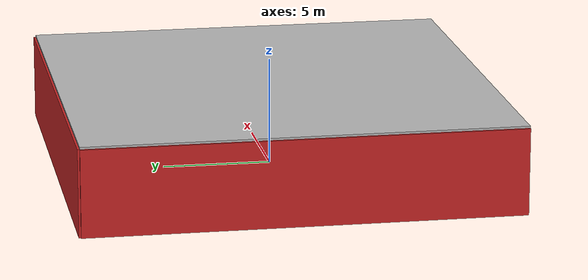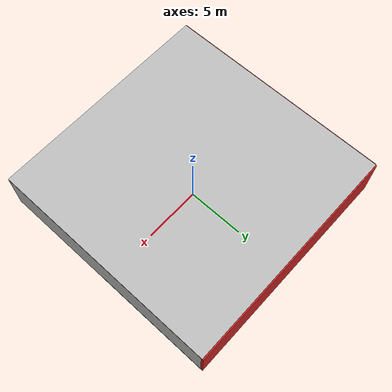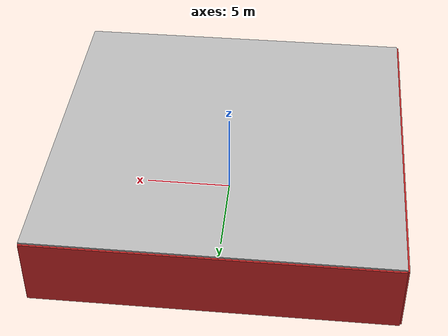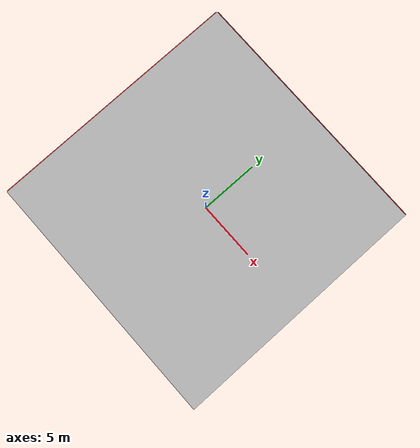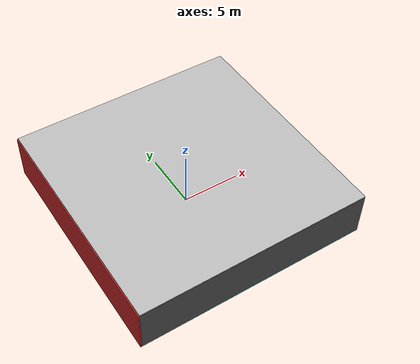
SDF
<sdf version="1.4">
 <world name="default">
  <physics type="ode">
   <max_step_size>0.001</max_step_size>
   <real_time_factor>1</real_time_factor>
   <real_time_update_rate>1000</real_time_update_rate>
   <gravity>0 0 -9.8</gravity>
  </physics>
  <scene><ambient>0.4 0.4 0.4 1</ambient><background>0.7 0.7 0.7 1</background><shadows>1</shadows></scene>
  <model name="Surrounding">
   <static>1</static>
   <link name="Ceiling">
    <collision name="Ceiling_Collision"><geometry><box><size>20 20 0.1</size></box></geometry></collision>
    <visual name="Ceiling_Visual">
     <geometry><box><size>20 20 0.1</size></box></geometry>
     <material>
      <script><uri>file://media/materials/scripts/gazebo.material</uri><name>Gazebo/LightOn</name></script>
     </material>
    </visual>
    <pose>0 0 4.05 0 0 0</pose>
   </link>
   <link name="Wall_South">
    <collision name="Wall_South_Collision">
     <geometry><box><size>20 0 4</size></box></geometry>
     <pose>0 0 2 0 -0 0</pose>
    </collision>
    <visual name="Wall_South_Visual">
     <pose>0 0 2 0 -0 0</pose>
     <geometry><box><size>20 0 4</size></box></geometry>
     <material>
      <script><uri>file://media/materials/scripts/gazebo.material</uri><name>Gazebo/DarkGrey</name></script>
     </material>
    </visual>
    <velocity_decay><linear>0</linear><angular>0</angular></velocity_decay>
    <pose>0 -10 0 0 -0 0</pose>
   </link>
   <link name="Wall_East">
    <collision name="Wall_21_Collision">
     <geometry><box><size>20 0 4</size></box></geometry>
     <pose>0 0 2 0 -0 0</pose>
    </collision>
    <visual name="Wall_21_Visual">
     <pose>0 0 2 0 -0 0</pose>
     <geometry><box><size>20 0 4</size></box></geometry>
     <material>
      <script><uri>file://media/materials/scripts/gazebo.material</uri><name>Gazebo/CeilingTiled</name></script>
     </material>
    </visual>
    <velocity_decay><linear>0</linear><angular>0</angular></velocity_decay>
    <pose>10 0 0 0 -0 1.5708</pose>
   </link>
   <link name="Wall_North">
    <collision name="Wall_22_Collision">
     <geometry><box><size>20 0.2 4</size></box></geometry>
     <pose>0 0 2 0 -0 0</pose>
    </collision>
    <visual name="Wall_22_Visual">
     <pose>0 0 2 0 -0 0</pose>
     <geometry><box><size>20 0.2 4</size></box></geometry>
     <material>
      <script><uri>file://media/materials/scripts/gazebo.material</uri><name>Gazebo/Red</name></script>
     </material>
    </visual>
    <velocity_decay><linear>0</linear><angular>0</angular></velocity_decay>
    <pose>0 10 0 0 -0 0</pose>
   </link>
   <link name="Wall_West">
    <collision name="Wall_23_Collision">
     <geometry><box><size>20 0.2 4</size></box></geometry>
     <pose>0 0 2 0 -0 0</pose>
    </collision>
    <visual name="Wall_23_Visual">
     <pose>0 0 2 0 -0 0</pose>
     <geometry><box><size>20 0.2 4</size></box></geometry>
     <material>
      <script><uri>file://media/materials/scripts/gazebo.material</uri><name>Gazebo/RedBright</name></script>
     </material>
    </visual>
    <velocity_decay><linear>0</linear><angular>0</angular></velocity_decay>
    <pose>-10 0 0 0 0 -1.5708</pose>
   </link>
   <link name="Ground_link">
    <collision name="collision">
     <pose>0 0 .05 0 -0 0</pose>
     <geometry><box><size>20 20 0.1</size></box></geometry>
    </collision>
    <visual name="visual">
     <pose>0 0 .05 0 -0 0</pose>
     <geometry><box><size>20 20 0.1</size></box></geometry>
     <material>
      <script>
       <uri>file://media/materials/scripts/gazebo.material</uri>
       <name>Gazebo/TurquoiseGlowOutline</name>
      </script>
     </material>
    </visual>
   </link>
   <static>1</static>
  </model>
  <spherical_coordinates>
   <surface_model>EARTH_WGS84</surface_model>
   <latitude_deg>0</latitude_deg>
   <longitude_deg>0</longitude_deg>
   <elevation>0</elevation>
   <heading_deg>0</heading_deg>
  </spherical_coordinates>
  <light name="lightball_0" type="diffuse">
   <diffuse>0.8 0.8 0.8 1</diffuse>
   <specular>0.2 0.2 0.2 1</specular>
   <attenuation>
    <range>100</range>
    <constant>0.7</constant>
    <linear>0.01</linear>
    <quadratic>0.001</quadratic>
   </attenuation>
   <direction>-0.5 0.1 -0.9</direction>
   <pose>8.24616763358 1.26337228298 1.98747775413 0 0 0</pose>
  </light>
  <light name="lightball_1" type="diffuse">
   <diffuse>0.8 0.8 0.8 1</diffuse>
   <specular>0.2 0.2 0.2 1</specular>
   <attenuation>
    <range>100</range>
    <constant>0.7</constant>
    <linear>0.01</linear>
    <quadratic>0.001</quadratic>
   </attenuation>
   <direction>-0.5 0.1 -0.9</direction>
   <pose>-7.77921654029 6.66066646032 1.57966688013 0 0 0</pose>
  </light>
  <light name="lightball_2" type="diffuse">
   <diffuse>0.8 0.8 0.8 1</diffuse>
   <specular>0.2 0.2 0.2 1</specular>
   <attenuation>
    <range>100</range>
    <constant>0.7</constant>
    <linear>0.01</linear>
    <quadratic>0.001</quadratic>
   </attenuation>
   <direction>-0.5 0.1 -0.9</direction>
   <pose>6.44401926551 -8.58644683618 3.22268186284 0 0 0</pose>
  </light>
  <light name="lightball_3" type="diffuse">
   <diffuse>0.8 0.8 0.8 1</diffuse>
   <specular>0.2 0.2 0.2 1</specular>
   <attenuation>
    <range>100</range>
    <constant>0.7</constant>
    <linear>0.01</linear>
    <quadratic>0.001</quadratic>
   </attenuation>
   <direction>-0.5 0.1 -0.9</direction>
   <pose>-0.261668186736 -0.789702597553 1.8962330237 0 0 0</pose>
  </light>
  <light name="lightball_4" type="diffuse">
   <diffuse>0.8 0.8 0.8 1</diffuse>
   <specular>0.2 0.2 0.2 1</specular>
   <attenuation>
    <range>100</range>
    <constant>0.7</constant>
    <linear>0.01</linear>
    <quadratic>0.001</quadratic>
   </attenuation>
   <direction>-0.5 0.1 -0.9</direction>
   <pose>-2.23772140413 9.61655155747 1.76830732781 0 0 0</pose>
  </light>
  <light name="lightball_5" type="diffuse">
   <diffuse>0.8 0.8 0.8 1</diffuse>
   <specular>0.2 0.2 0.2 1</specular>
   <attenuation>
    <range>100</range>
    <constant>0.7</constant>
    <linear>0.01</linear>
    <quadratic>0.001</quadratic>
   </attenuation>
   <direction>-0.5 0.1 -0.9</direction>
   <pose>3.69539679143 -6.83972301644 2.2608680081 0 0 0</pose>
  </light>
  <light name="lightball_6" type="diffuse">
   <diffuse>0.8 0.8 0.8 1</diffuse>
   <specular>0.2 0.2 0.2 1</specular>
   <attenuation>
    <range>100</range>
    <constant>0.7</constant>
    <linear>0.01</linear>
    <quadratic>0.001</quadratic>
   </attenuation>
   <direction>-0.5 0.1 -0.9</direction>
   <pose>-3.35840583459 -6.43075480848 2.18650505973 0 0 0</pose>
  </light>
  <light name="lightball_7" type="diffuse">
   <diffuse>0.8 0.8 0.8 1</diffuse>
   <specular>0.2 0.2 0.2 1</specular>
   <attenuation>
    <range>100</range>
    <constant>0.7</constant>
    <linear>0.01</linear>
    <quadratic>0.001</quadratic>
   </attenuation>
   <direction>-0.5 0.1 -0.9</direction>
   <pose>-3.47551160618 6.6551583018 3.27518053869 0 0 0</pose>
  </light>
  <include>
   <uri>model://textured_shapes</uri>
   <pose>-1.59924301343 7.29956338277 0 0 0 2.41836120398</pose>
  </include>
  <include>
   <uri>model://textured_shapes</uri>
   <pose>4.36397064995 4.22234096214 0 0 0 1.14693545827</pose>
  </include>
 </world>
</sdf>

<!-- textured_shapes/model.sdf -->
<sdf version="1.6">
  <model name="textured_shapes">
    <pose>0 0 0.5 0 0 0</pose>
    <link name="box">
      <pose>0 -1.5 0 0 0 0</pose>
      <collision name="collision">
        <geometry>
          <box>
            <size>1 1 1</size>
          </box>
        </geometry>
      </collision>
      <visual name="visual">
        <geometry>
          <box>
            <size>1 1 1</size>
          </box>
        </geometry>
        <material>
          <script>
            <uri>model://../model_source/models/textured_shapes/materials/scripts</uri>
            <uri>model://../model_source/models/textured_shapes/materials/textures</uri>
            <name>TexturedShape/Squares</name>
          </script>
        </material>
      </visual>
    </link>
    <link name="sphere">
      <collision name="collision">
        <geometry>
          <sphere>
            <radius>0.5</radius>
          </sphere>
        </geometry>
      </collision>
      <visual name="visual">
        <geometry>
          <sphere>
            <radius>0.5</radius>
          </sphere>
        </geometry>
        <material>
          <script>
            <uri>model://../model_source/models/textured_shapes/materials/scripts</uri>
            <uri>model://../model_source/models/textured_shapes/materials/textures</uri>
            <name>TexturedShape/Squares</name>
          </script>
        </material>
      </visual>
    </link>
    <link name="cylinder">
      <pose>0 1.5 0 0 0 0</pose>
      <collision name="collision">
        <geometry>
          <cylinder>
            <radius>0.5</radius>
            <length>1</length>
          </cylinder>
        </geometry>
      </collision>
      <visual name="visual">
        <geometry>
          <cylinder>
            <radius>0.5</radius>
            <length>1</length>
          </cylinder>
        </geometry>
        <material>
          <script>
            <uri>model://../model_source/models/textured_shapes/materials/scripts</uri>
            <uri>model://../model_source/models/textured_shapes/materials/textures</uri>
            <name>TexturedShape/Squares</name>
          </script>
        </material>
      </visual>
    </link>
  </model>
</sdf>
